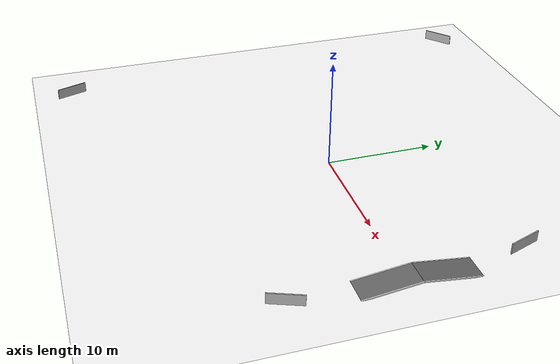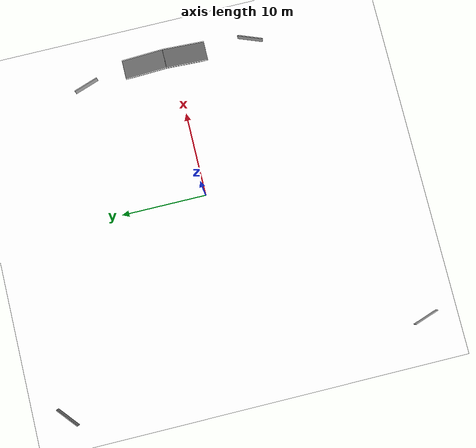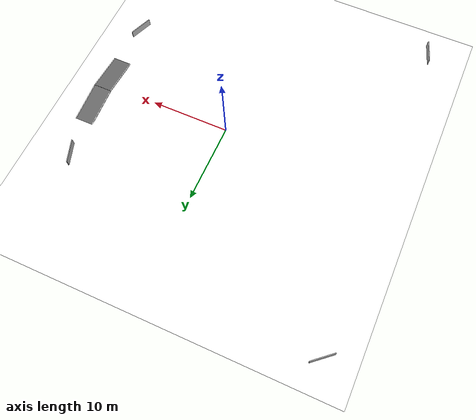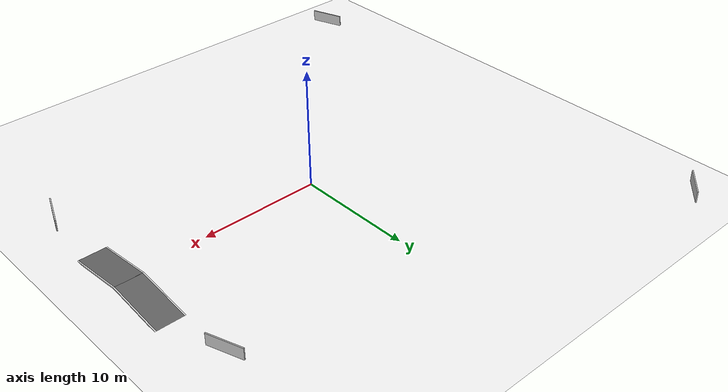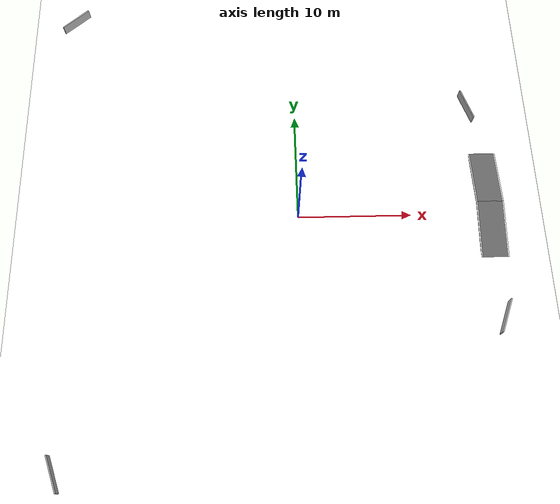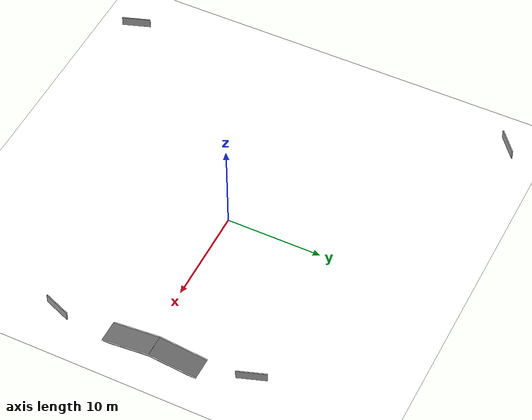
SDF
<sdf version="1.7">
 <world name="default">
  <physics name="1ms" type="ignored">
   <max_step_size>0.004</max_step_size>
   <real_time_factor>1.0</real_time_factor>
   <real_time_update_rate>250</real_time_update_rate>
  </physics>
  <scene><ambient>1 1 1 1</ambient><background>0.7 0.7 0.7 1</background><shadows>0</shadows></scene>
  <plugin filename="ignition-gazebo-physics-system" name="ignition::gazebo::systems::Physics"/>
  <plugin filename="ignition-gazebo-user-commands-system" name="ignition::gazebo::systems::UserCommands"/>
  <plugin filename="ignition-gazebo-scene-broadcaster-system" name="ignition::gazebo::systems::SceneBroadcaster"/>
  <light name="sun" type="directional">
   <cast_shadows>0</cast_shadows>
   <pose>0 0 10 0 -0 0</pose>
   <diffuse>1 1 1 1</diffuse>
   <specular>0.2 0.2 0.2 1</specular>
   <attenuation>
    <range>1000</range>
    <constant>0.9</constant>
    <linear>0.01</linear>
    <quadratic>0.001</quadratic>
   </attenuation>
   <direction>-0.5 0.1 -0.9</direction>
  </light>
  <model name="igvc_basic_ground">
   <static>true</static>
   <link name="link">
    <collision name="collision">
     <geometry><plane><normal>0 0 1</normal><size>50 50</size></plane></geometry>
     <surface><friction><ode><mu>100</mu><mu2>50</mu2></ode></friction></surface>
    </collision>
    <visual name="visual">
     <cast_shadows>false</cast_shadows>
     <geometry><plane><normal>0 0 1</normal><size>50 50</size></plane></geometry>
     <material>
      <ambient>1 1 1 1</ambient>
      <diffuse>1 1 1 1</diffuse>
      <specular>0 0 0 1</specular>
      <pbr><metal><albedo_map>IGVC_pavement.png</albedo_map><roughness>0.9</roughness></metal></pbr>
     </material>
    </visual>
   </link>
  </model>
  <spherical_coordinates>
   <surface_model>EARTH_WGS84</surface_model>
   <latitude_deg>0</latitude_deg>
   <longitude_deg>0</longitude_deg>
   <elevation>0</elevation>
   <heading_deg>0</heading_deg>
  </spherical_coordinates>
  <model name="barricade_1">
   <static>1</static>
   <pose>16 10.65 0.5 0 -0 1.9</pose>
   <link name="link">
    <collision name="collision"><geometry><box><size>3 0.1 1</size></box></geometry></collision>
    <visual name="visual"><geometry><box><size>3 0.1 1</size></box></geometry></visual>
   </link>
  </model>
  <model name="barricade_2">
   <static>1</static>
   <pose>17 -9.5 0.5 0 -0 1.2</pose>
   <link name="link">
    <collision name="collision"><geometry><box><size>3 0.1 1</size></box></geometry></collision>
    <visual name="visual"><geometry><box><size>3 0.1 1</size></box></geometry></visual>
   </link>
  </model>
  <model name="barricade_3">
   <static>1</static>
   <pose>-19.8 -21.17 0.5 0 -0 1.9</pose>
   <link name="link">
    <collision name="collision"><geometry><box><size>3 0.1 1</size></box></geometry></collision>
    <visual name="visual"><geometry><box><size>3 0.1 1</size></box></geometry></visual>
   </link>
  </model>
  <model name="barricade_4">
   <static>1</static>
   <pose>-21 21 0.5 0 -0 0.7</pose>
   <link name="link">
    <collision name="collision"><geometry><box><size>3 0.1 1</size></box></geometry></collision>
    <visual name="visual"><geometry><box><size>3 0.1 1</size></box></geometry></visual>
   </link>
  </model>
  <model name="ramp_up">
   <static>1</static>
   <pose>17 -2 0.15 0.1265364 -0 0</pose>
   <link name="link">
    <collision name="collision">
     <geometry><box><size>2.214 6 0.1</size></box></geometry>
     <surface>
      <friction><ode><mu>100</mu><mu2>50</mu2><slip1>0.0</slip1><slip2>0.0</slip2></ode></friction>
     </surface>
    </collision>
    <visual name="visual">
     <geometry><box><size>2.214 6 0.1</size></box></geometry>
     <material><ambient>0.4 0.7 0.6 1</ambient><diffuse>0.4 0.4 0.4 1</diffuse></material>
    </visual>
   </link>
  </model>
  <model name="ramp_down">
   <static>1</static>
   <pose>17 3.92 0.15 0.1265364 0 3.14</pose>
   <link name="link">
    <collision name="collision">
     <geometry><box><size>2.214 6 0.1</size></box></geometry>
     <surface>
      <friction><ode><mu>100</mu><mu2>50</mu2><slip1>0.0</slip1><slip2>0.0</slip2></ode></friction>
     </surface>
    </collision>
    <visual name="visual">
     <geometry><box><size>2.214 6 0.1</size></box></geometry>
     <material><ambient>0.4 0.7 0.6 1</ambient><diffuse>0.4 0.4 0.4 1</diffuse></material>
    </visual>
   </link>
  </model>
  <model name="ramp_up_lane_line_left">
   <static>1</static>
   <pose>18.157 -2 0.15 0.1265364 -0 0</pose>
   <link name="link">
    <inertial><mass>0.1</mass><inertia><ixx>0.0001</ixx><iyy>0.0001</iyy><izz>0.0001</izz></inertia></inertial>
    <collision name="collision">
     <geometry><box><size>0.1 6 0.1</size></box></geometry>
     <surface><friction><ode><mu>0.1</mu><mu2>0.1</mu2></ode></friction></surface>
    </collision>
    <visual name="visual">
     <geometry><box><size>0.1 6 0.1</size></box></geometry>
     <material><ambient>1 1 1 1</ambient><diffuse>1 1 1 1</diffuse></material>
    </visual>
   </link>
  </model>
  <model name="ramp_up_lane_line_right">
   <static>1</static>
   <pose>15.843 -2 0.15 0.1265364 -0 0</pose>
   <link name="link">
    <inertial><mass>0.1</mass><inertia><ixx>0.0001</ixx><iyy>0.0001</iyy><izz>0.0001</izz></inertia></inertial>
    <collision name="collision">
     <geometry><box><size>0.1 6 0.1</size></box></geometry>
     <surface><friction><ode><mu>0.1</mu><mu2>0.1</mu2></ode></friction></surface>
    </collision>
    <visual name="visual">
     <geometry><box><size>0.1 6 0.1</size></box></geometry>
     <material><ambient>1 1 1 1</ambient><diffuse>1 1 1 1</diffuse></material>
    </visual>
   </link>
  </model>
  <model name="ramp_down_lane_line_left">
   <static>1</static>
   <pose>18.157 3.92 0.15 0.1265364 0 3.14</pose>
   <link name="link">
    <inertial><mass>0.1</mass><inertia><ixx>0.0001</ixx><iyy>0.0001</iyy><izz>0.0001</izz></inertia></inertial>
    <collision name="collision">
     <geometry><box><size>0.1 6 0.1</size></box></geometry>
     <surface><friction><ode><mu>0.1</mu><mu2>0.1</mu2></ode></friction></surface>
    </collision>
    <visual name="visual">
     <geometry><box><size>0.1 6 0.1</size></box></geometry>
     <material><ambient>1 1 1 1</ambient><diffuse>1 1 1 1</diffuse></material>
    </visual>
   </link>
  </model>
  <model name="ramp_down_lane_line_right">
   <static>1</static>
   <pose>15.843 3.92 0.15 0.1265364 0 3.14</pose>
   <link name="link">
    <inertial><mass>0.1</mass><inertia><ixx>0.0001</ixx><iyy>0.0001</iyy><izz>0.0001</izz></inertia></inertial>
    <collision name="collision">
     <geometry><box><size>0.1 6 0.1</size></box></geometry>
     <surface><friction><ode><mu>0.1</mu><mu2>0.1</mu2></ode></friction></surface>
    </collision>
    <visual name="visual">
     <geometry><box><size>0.1 6 0.1</size></box></geometry>
     <material><ambient>1 1 1 1</ambient><diffuse>1 1 1 1</diffuse></material>
    </visual>
   </link>
  </model>
 </world>
</sdf>
